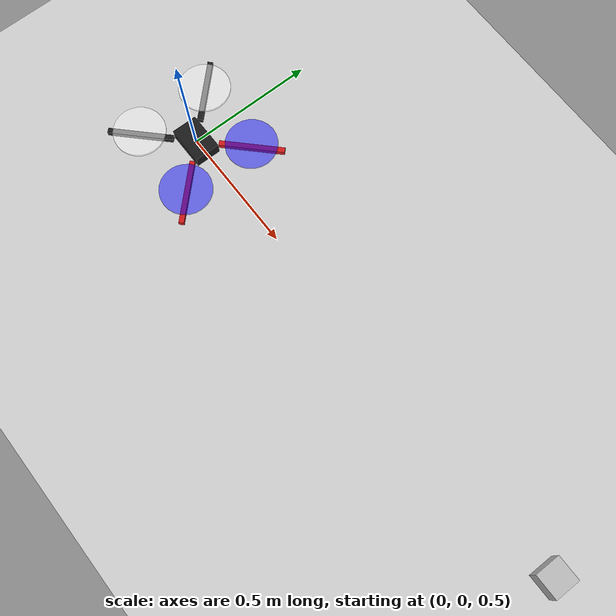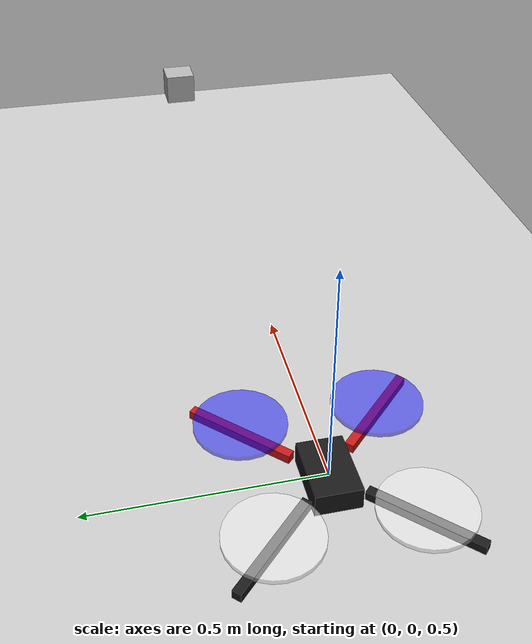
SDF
<?xml version="1.0" ?>
<sdf version="1.6">
  <world name="default">
    <physics name="1ms" type="ignored">
      <max_step_size>0.001</max_step_size>
      <real_time_factor>1.0</real_time_factor>
    </physics>

    <!-- Spherical Coordinates for GPS (Singapore) -->
    <spherical_coordinates>
      <surface_model>EARTH_WGS84</surface_model>
      <world_frame_orientation>ENU</world_frame_orientation>
      <latitude_deg>1.3521</latitude_deg>
      <longitude_deg>103.8198</longitude_deg>
      <elevation>0.0</elevation>
      <heading_deg>0</heading_deg>
    </spherical_coordinates>

    <!-- Essential Plugins -->
    <plugin filename="gz-sim-physics-system" name="gz::sim::systems::Physics"/>
    <plugin filename="gz-sim-user-commands-system" name="gz::sim::systems::UserCommands"/>
    <plugin filename="gz-sim-scene-broadcaster-system" name="gz::sim::systems::SceneBroadcaster"/>

    <!-- SENSORS PLUGIN -->
    <plugin filename="gz-sim-sensors-system" name="gz::sim::systems::Sensors">
      <render_engine>ogre2</render_engine>
    </plugin>
    <plugin filename="gz-sim-imu-system" name="gz::sim::systems::Imu"/>
    <plugin filename="gz-sim-magnetometer-system" name="gz::sim::systems::Magnetometer"/>
    <plugin filename="gz-sim-altimeter-system" name="gz::sim::systems::Altimeter"/>
    <plugin filename="gz-sim-navsat-system" name="gz::sim::systems::NavSat"/>

    <!-- APPLY LINK WRENCH PLUGIN (Must be attached to World) -->
    <plugin filename="gz-sim-apply-link-wrench-system" name="gz::sim::systems::ApplyLinkWrench">
        <target_link>quadcopter::base_link</target_link>
        <topic>/model/quadcopter/wrench</topic>
    </plugin>

    <!-- Environment -->
    <include>
      <uri>https://fuel.gazebosim.org/1.0/OpenRobotics/models/Sun</uri>
    </include>
    <!-- Ground Plane (Simple Box to avoid Contact Warnings) -->
    <model name="ground_plane">
      <static>true</static>
      <link name="link">
        <collision name="collision">
          <geometry>
            <plane>
              <normal>0 0 1</normal>
              <size>100 100</size>
            </plane>
          </geometry>
        </collision>
        <visual name="visual">
          <geometry>
            <plane>
              <normal>0 0 1</normal>
              <size>100 100</size>
            </plane>
          </geometry>
          <material>
            <ambient>0.8 0.8 0.8 1</ambient>
            <diffuse>0.8 0.8 0.8 1</diffuse>
            <specular>0.8 0.8 0.8 1</specular>
          </material>
        </visual>
      </link>
      <plugin filename="gz-sim-contact-system" name="gz::sim::systems::Contact"/>
    </model>

    <!-- Debug IMU Model -->
    <model name="debug_imu_box">
      <pose>2 0 0.5 0 0 0</pose>
      <static>true</static>
      <link name="link">
        <visual name="visual">
          <geometry><box><size>0.1 0.1 0.1</size></box></geometry>
        </visual>
        <sensor name="debug_imu_sensor" type="imu">
            <always_on>1</always_on>
            <update_rate>1</update_rate>
            <topic>debug_imu</topic>
        </sensor>
      </link>
    </model>

    <!-- The Drone Model (Unified) -->
    <model name="quadcopter">
      <pose>0 0 0.5 0 0 0</pose>

      <link name="base_link">
        <inertial>
          <mass>1.5</mass>
          <inertia>
            <ixx>0.06</ixx> <ixy>0</ixy> <ixz>0</ixz>
            <iyy>0.06</iyy> <iyz>0</iyz>
            <izz>0.10</izz>
          </inertia>
        </inertial>

        <!-- Main Body -->
        <visual name="body_visual">
          <geometry> <box> <size>0.15 0.1 0.05</size> </box> </geometry>
          <material> <ambient>0.1 0.1 0.1 1</ambient> <diffuse>0.1 0.1 0.1 1</diffuse> </material>
        </visual>

        <!-- Arms (Static part of the frame) -->
        <visual name="arm1_visual"> <pose>0.15 -0.15 0 0 0 -0.785</pose> <geometry> <box> <size>0.25 0.02 0.02</size> </box> </geometry> <material> <ambient>0.8 0.1 0.1 1</ambient> <diffuse>0.8 0.1 0.1 1</diffuse> </material> </visual>
        <visual name="arm2_visual"> <pose>0.15 0.15 0 0 0 0.785</pose> <geometry> <box> <size>0.25 0.02 0.02</size> </box> </geometry> <material> <ambient>0.8 0.1 0.1 1</ambient> <diffuse>0.8 0.1 0.1 1</diffuse> </material> </visual>
        <visual name="arm3_visual"> <pose>-0.15 -0.15 0 0 0 0.785</pose> <geometry> <box> <size>0.25 0.02 0.02</size> </box> </geometry> <material> <ambient>0.1 0.1 0.1 1</ambient> <diffuse>0.1 0.1 0.1 1</diffuse> </material> </visual>
        <visual name="arm4_visual"> <pose>-0.15 0.15 0 0 0 -0.785</pose> <geometry> <box> <size>0.25 0.02 0.02</size> </box> </geometry> <material> <ambient>0.1 0.1 0.1 1</ambient> <diffuse>0.1 0.1 0.1 1</diffuse> </material> </visual>

        <!-- Collision (Simplified to cover whole drone) -->
        <collision name="collision">
          <geometry>
            <box>
              <size>0.4 0.4 0.1</size>
            </box>
          </geometry>
        </collision>

        <sensor name="imu_sensor" type="imu">
          <always_on>1</always_on>
          <update_rate>500</update_rate>
        </sensor>
        <sensor name="magnetometer_sensor" type="magnetometer">
            <always_on>1</always_on>
            <update_rate>100</update_rate>
        </sensor>
        <sensor name="altimeter_sensor" type="altimeter">
            <always_on>1</always_on>
            <update_rate>100</update_rate>
        </sensor>
        <sensor name="navsat_sensor" type="navsat">
            <always_on>1</always_on>
            <update_rate>10</update_rate>
        </sensor>
      </link>

      <!-- ROTORS -->
      <!-- Rotor 1 (Front Right) -->
      <link name="rotor_0">
        <pose>0.15 -0.15 0.03 0 0 0</pose>
        <inertial> <mass>0.005</mass> <inertia> <ixx>1e-5</ixx> <iyy>1e-5</iyy> <izz>1e-5</izz> </inertia> </inertial>
        <visual name="rotor_0_vis">
          <geometry> <cylinder> <radius>0.1</radius> <length>0.01</length> </cylinder> </geometry>
          <material> <ambient>0 0 1 0.5</ambient> <diffuse>0 0 1 0.5</diffuse> </material>
        </visual>
      </link>
      <joint name="rotor_0_joint" type="revolute">
        <parent>base_link</parent> <child>rotor_0</child>
        <axis> <xyz>0 0 1</xyz> <limit><lower>-1e16</lower><upper>1e16</upper></limit></axis>
      </joint>

      <!-- Rotor 2 (Front Left) -->
      <link name="rotor_1">
        <pose>0.15 0.15 0.03 0 0 0</pose>
        <inertial> <mass>0.005</mass> <inertia> <ixx>1e-5</ixx> <iyy>1e-5</iyy> <izz>1e-5</izz> </inertia> </inertial>
        <visual name="rotor_1_vis">
          <geometry> <cylinder> <radius>0.1</radius> <length>0.01</length> </cylinder> </geometry>
          <material> <ambient>0 0 1 0.5</ambient> <diffuse>0 0 1 0.5</diffuse> </material>
        </visual>
      </link>
      <joint name="rotor_1_joint" type="revolute">
        <parent>base_link</parent> <child>rotor_1</child>
        <axis> <xyz>0 0 1</xyz> <limit><lower>-1e16</lower><upper>1e16</upper></limit></axis>
      </joint>

      <!-- Rotor 3 (Back Right) -->
      <link name="rotor_2">
        <pose>-0.15 -0.15 0.03 0 0 0</pose>
        <inertial> <mass>0.005</mass> <inertia> <ixx>1e-5</ixx> <iyy>1e-5</iyy> <izz>1e-5</izz> </inertia> </inertial>
        <visual name="rotor_2_vis">
          <geometry> <cylinder> <radius>0.1</radius> <length>0.01</length> </cylinder> </geometry>
          <material> <ambient>1 1 1 0.5</ambient> <diffuse>1 1 1 0.5</diffuse> </material>
        </visual>
      </link>
      <joint name="rotor_2_joint" type="revolute">
        <parent>base_link</parent> <child>rotor_2</child>
        <axis> <xyz>0 0 1</xyz> <limit><lower>-1e16</lower><upper>1e16</upper></limit></axis>
      </joint>

      <!-- Rotor 4 (Back Left) -->
      <link name="rotor_3">
        <pose>-0.15 0.15 0.03 0 0 0</pose>
        <inertial> <mass>0.005</mass> <inertia> <ixx>1e-5</ixx> <iyy>1e-5</iyy> <izz>1e-5</izz> </inertia> </inertial>
        <visual name="rotor_3_vis">
          <geometry> <cylinder> <radius>0.1</radius> <length>0.01</length> </cylinder> </geometry>
          <material> <ambient>1 1 1 0.5</ambient> <diffuse>1 1 1 0.5</diffuse> </material>
        </visual>
      </link>
      <joint name="rotor_3_joint" type="revolute">
        <parent>base_link</parent> <child>rotor_3</child>
        <axis> <xyz>0 0 1</xyz> <limit><lower>-1e16</lower><upper>1e16</upper></limit></axis>
      </joint>

    </model>
  </world>
</sdf>
